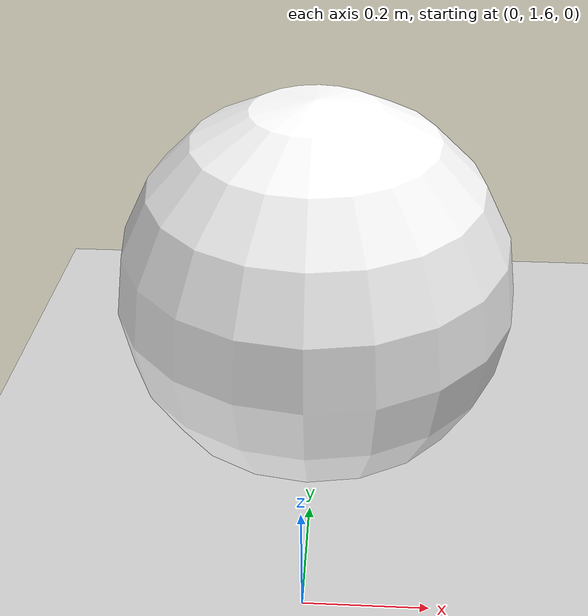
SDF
<?xml version="1.0" ?>
<sdf version="1.6">
  <world name="default">
    <include>
      <uri>model://sun</uri>
    </include>
    <include>
      <uri>model://ground_plane</uri>
    </include>

    <model name="my_ball">
        <pose>0 2 0.34 0 0 0</pose>
        <link name="ball_link">
            <inertial>
                <mass>1.0</mass>
                <inertia>
                    <ixx>0.046</ixx>
                    <iyy>0.046</iyy>
                    <izz>0.046</izz>
                    <ixy>0</ixy>
                    <ixz>0</ixz>
                    <iyz>0</iyz>
                </inertia>
            </inertial>
            <visual name="visual">
                <geometry>
                    <sphere>
                        <radius>0.34</radius>
                    </sphere>
                </geometry>
                <material>
                    <ambient>1 1 1 1</ambient>
                    <diffuse>1 1 1 1</diffuse>
                    <specular>0.1 0.1 0.1 1</specular>
                </material>
            </visual>
            <collision name="collision">
                <geometry>
                    <sphere>
                        <radius>0.34</radius>
                    </sphere>
                </geometry>
            </collision>
        </link>
    </model>

  </world>
</sdf>
